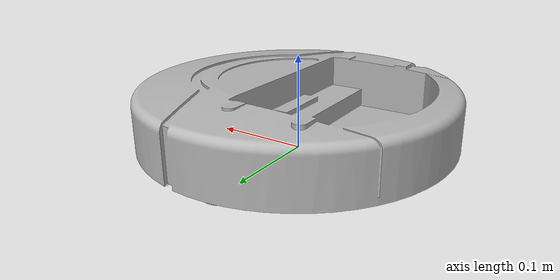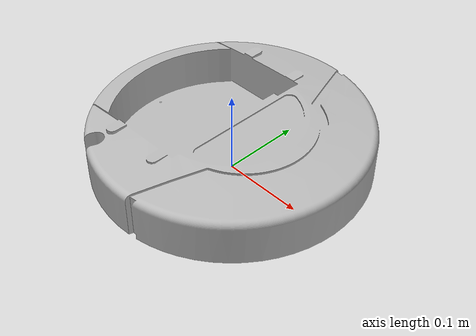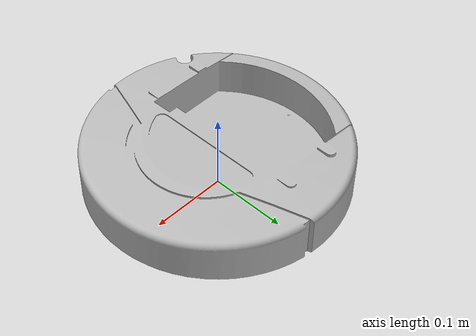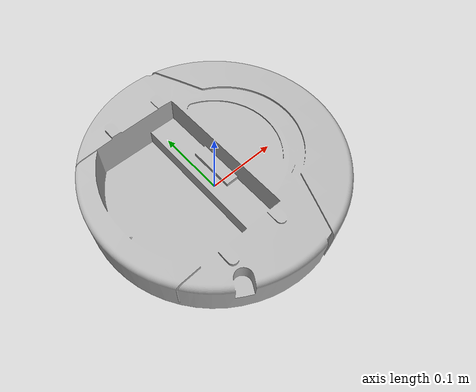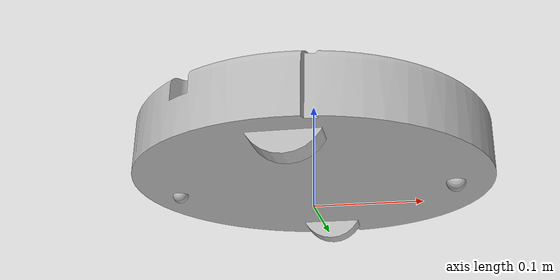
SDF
<?xml version="1.0" ?>
<sdf version="1.4">
  <model name="iRobotCreate">
    <link name="base_link">
      <inertial>
        <pose>0.001453 -0.000453 0.029787 0 0 0</pose>
        <inertia>
          <ixx>0.058640</ixx>
          <ixy>0.000124</ixy>
          <ixz>0.000615</ixz>
          <iyy>0.058786</iyy>
          <iyz>0.000014</iyz>
          <izz>1.532440</izz>
        </inertia>
        <mass>2.234000</mass>
      </inertial>

      <collision name="base_link_collision">
        <pose>0 0 0.047800 0 0 0</pose>
        <geometry>
          <cylinder>
            <radius>0.166495</radius>
            <length>0.061163</length>
          </cylinder>
        </geometry>
      </collision>
      <visual name="base_link_visual">
        <pose>0 0 0.047800 0 0 0</pose>
        <geometry>
          <mesh>
            <uri>model://irobot/meshes/create_blinky.dae</uri>
          </mesh>
        </geometry>
      </visual>

      <collision name="front_wheel_collision">
        <pose>0.130000 0 0.017000 0 1.570700 1.570700</pose>
        <geometry>
          <sphere>
            <radius>0.018000</radius>
          </sphere>
        </geometry>
        <surface>
          <friction>
            <ode>
              <mu>0</mu>
              <mu2>0</mu2>
              <fdir1>0 0 0</fdir1>
              <slip1>0</slip1>
              <slip2>0</slip2>
            </ode>
          </friction>
        </surface>
      </collision>
      <visual name="front_wheel_visual">
        <pose>0.130000 0 0.017000 0 1.570700 1.570700</pose>
        <geometry>
          <sphere>
            <radius>0.009000</radius>
          </sphere>
        </geometry>
      </visual>

      <collision name="rear_wheel_collision">
        <pose>-0.13 0 0.017 0 1.5707 1.5707</pose>
        <geometry>
          <sphere>
            <radius>0.015000</radius>
          </sphere>
        </geometry>
        <surface>
          <friction>
            <ode>
              <mu>0</mu>
              <mu2>0</mu2>
              <fdir1>0 0 0</fdir1>
              <slip1>0</slip1>
              <slip2>0</slip2>
            </ode>
          </friction>
        </surface>
      </collision>
      <visual name="rear_wheel_visual">
        <pose>-0.130000 0 0.017000 0 1.570700 1.570700</pose>
        <geometry>
          <sphere>
            <radius>0.007500</radius>
          </sphere>
        </geometry>
      </visual>

      <sensor name='left_distance_sensor' type='ray'>
          <visualize>1</visualize>
          <update_rate>40</update_rate>
          <ray>
            <scan>
              <horizontal>
                <samples>3</samples>
                <resolution>1</resolution>
                <min_angle>0.0</min_angle>
                <max_angle>-0.16</max_angle>
              </horizontal>
            </scan>
            <range>
              <min>0.1</min>
              <max>1.25</max>
              <resolution>0.025</resolution>
            </range>
            <noise>
              <type>gaussian</type>
              <mean>0</mean>
              <stddev>0.025</stddev>
            </noise>
          </ray>
          <plugin name='gazebo_ros_left_distance_controller' filename='libgazebo_ros_laser.so'>
            <topicName>irobot/left_distance_scan</topicName>
            <frameName>irobot_l_dist</frameName>
          </plugin>
          <pose>0.1 0.1 0.06 0 0 0.3</pose>
      </sensor>

      <sensor name='camera' type='camera'>
          <visualize>1</visualize>
          <update_rate>40</update_rate>
          <camera name="head">
        	<horizontal_fov>1.3962634</horizontal_fov>
        	<image>
          		<width>800</width>
          		<height>800</height>
          		<format>R8G8B8</format>
        	</image>
        	<clip>
          		<near>0.02</near>
          		<far>300</far>
        	</clip>
        	<noise>
          	<type>gaussian</type>
          	<!-- Noise is sampled independently per pixel on each frame.
               That pixel's noise value is added to each of its color
               channels, which at that point lie in the range [0,1]. -->
          	<mean>0.0</mean>
          	<stddev>0.007</stddev>
        	</noise>
      	   </camera>
          <plugin name='camera_controller' filename='libgazebo_ros_camera.so'>
            	<alwaysOn>true</alwaysOn>
        	<updateRate>0.0</updateRate>
        	<cameraName>irobot/camera</cameraName>
        	<imageTopicName>image_raw</imageTopicName>
        	<cameraInfoTopicName>camera_info</cameraInfoTopicName>
        	<frameName>camera_link</frameName>
        	<hackBaseline>0.07</hackBaseline>
        	<distortionK1>0.0</distortionK1>
        	<distortionK2>0.0</distortionK2>
        	<distortionK3>0.0</distortionK3>
        	<distortionT1>0.0</distortionT1>
        	<distortionT2>0.0</distortionT2>
          </plugin>
          <pose>0.2 0 0 0 -0.25 0</pose>
      </sensor>

      <sensor name='right_distance_sensor' type='ray'>
            <visualize>1</visualize>
            <update_rate>40</update_rate>
            <ray>
              <scan>
                <horizontal>
                  <samples>3</samples>
                  <resolution>1</resolution>
                  <min_angle>0.0</min_angle>
                  <max_angle>0.16</max_angle>
                </horizontal>
              </scan>
              <range>
                <min>0.1</min>
                <max>1.25</max>
                <resolution>0.025</resolution>
              </range>
              <noise>
                <type>gaussian</type>
                <mean>0</mean>
                <stddev>0.025</stddev>
              </noise>
            </ray>
            <plugin name='gazebo_ros_right_distance_controller' filename='libgazebo_ros_laser.so'>
              <topicName>irobot/right_distance_scan</topicName>
              <frameName>irobot_r_dist</frameName>
            </plugin>
            <pose>0.1 -0.1 0.06 0 0 -0.3</pose>
        </sensor>

          <sensor name='left_cliff_sensor' type='ray'>
              <visualize>1</visualize>
              <update_rate>40</update_rate>
              <ray>
                <scan>
                  <horizontal>
                    <samples>3</samples>
                    <resolution>1</resolution>
                    <min_angle>-0.05</min_angle>
                    <max_angle>0.05</max_angle>
                  </horizontal>
                </scan>
                <range>
                  <min>0.0</min>
                  <max>0.15</max>
                  <resolution>0.025</resolution>
                </range>
                <noise>
                  <type>gaussian</type>
                  <mean>0</mean>
                  <stddev>0</stddev>
                </noise>
              </ray>
              <plugin name='gazebo_ros_left_cliff_controller' filename='libgazebo_ros_laser.so'>
                <topicName>irobot/left_cliff_scan</topicName>
                <frameName>irobot_l_cliff</frameName>
              </plugin>
              <pose>0.09 0.13 0.06 0 1.5708 0</pose>
          </sensor>

          <sensor name='left_front_cliff_sensor' type='ray'>
              <visualize>1</visualize>
              <update_rate>40</update_rate>
              <ray>
                <scan>
                  <horizontal>
                    <samples>3</samples>
                    <resolution>1</resolution>
                    <min_angle>-0.05</min_angle>
                    <max_angle>0.05</max_angle>
                  </horizontal>
                </scan>
                <range>
                  <min>0.0</min>
                  <max>0.15</max>
                  <resolution>0.025</resolution>
                </range>
                <noise>
                  <type>gaussian</type>
                  <mean>0</mean>
                  <stddev>0</stddev>
                </noise>
              </ray>
              <plugin name='gazebo_ros_left_front_cliff_controller' filename='libgazebo_ros_laser.so'>
                <topicName>irobot/left_front_cliff_scan</topicName>
                <frameName>irobot_lf_cliff</frameName>
              </plugin>
              <pose>0.15 0.05 0.06 0 1.5708 0</pose>
          </sensor>

            <sensor name='right_front_cliff_sensor' type='ray'>
                <visualize>1</visualize>
                <update_rate>40</update_rate>
                <ray>
                  <scan>
                    <horizontal>
                      <samples>3</samples>
                      <resolution>1</resolution>
                      <min_angle>-0.05</min_angle>
                      <max_angle>0.05</max_angle>
                    </horizontal>
                  </scan>
                  <range>
                    <min>0.0</min>
                    <max>0.15</max>
                    <resolution>0.025</resolution>
                  </range>
                  <noise>
                    <type>gaussian</type>
                    <mean>0</mean>
                    <stddev>0</stddev>
                  </noise>
                </ray>
                <plugin name='gazebo_ros_right_front_cliff_controller' filename='libgazebo_ros_laser.so'>
                  <topicName>irobot/right_front_cliff_scan</topicName>
                  <frameName>irobot_rf_cliff</frameName>
                </plugin>
                <pose>0.15 -0.05 0.06 0 1.5708 0</pose>
            </sensor>

            <sensor name='right_cliff_sensor' type='ray'>
                <visualize>1</visualize>
                <update_rate>40</update_rate>
                <ray>
                  <scan>
                    <horizontal>
                      <samples>3</samples>
                      <resolution>1</resolution>
                      <min_angle>-0.05</min_angle>
                      <max_angle>0.05</max_angle>
                    </horizontal>
                  </scan>
                  <range>
                    <min>0.0</min>
                    <max>0.15</max>
                    <resolution>0.025</resolution>
                  </range>
                  <noise>
                    <type>gaussian</type>
                    <mean>0</mean>
                    <stddev>0</stddev>
                  </noise>
                </ray>
                <plugin name='gazebo_ros_right_cliff_controller' filename='libgazebo_ros_laser.so'>
                  <topicName>irobot/right_cliff_scan</topicName>
                  <frameName>irobot_r_cliff</frameName>
                </plugin>
                <pose>0.09 -0.13 0.06 0 1.5708 0</pose>
            </sensor>

            <sensor name='bump_sensor' type='ray'>
                <visualize>1</visualize>
                <update_rate>40</update_rate>
                <ray>
                  <scan>
                    <horizontal>
                      <samples>10</samples>
                      <resolution>1</resolution>
                      <min_angle>-1.0</min_angle>
                      <max_angle>1.0</max_angle>
                    </horizontal>
                  </scan>
                  <range>
                    <min>0.168</min>
                    <max>0.180</max>
                    <resolution>0.025</resolution>
                  </range>
                  <noise>
                    <type>gaussian</type>
                    <mean>0</mean>
                    <stddev>0</stddev>
                  </noise>
                </ray>
                <plugin name='gazebo_ros_bump_distance_controller' filename='libgazebo_ros_laser.so'>
                  <topicName>irobot/bump_sensor_scan</topicName>
                  <frameName>irobot_bump</frameName>
                </plugin>
                <pose>0 0 0.02 0 0 0</pose>
            </sensor>
    </link>

    <link name="left_wheel">
      <pose>0 0.130000 0.032000 0 0 0</pose>
      <inertial>
        <inertia>
          <ixx>0.001000</ixx>
          <ixy>0</ixy>
          <ixz>0</ixz>
          <iyy>0.001000</iyy>
          <iyz>0</iyz>
          <izz>0.001000</izz>
        </inertia>
        <mass>0.010000</mass>
      </inertial>
      <collision name="collision">
        <pose>0 0 0 0 1.570700 1.570700</pose>
        <geometry>
          <cylinder>
            <radius>0.033000</radius>
            <length>0.023000</length>
          </cylinder>
        </geometry>
        <surface>
          <friction>
            <ode>
              <mu>10</mu>
              <mu2>10</mu2>
              <fdir1>0 0 0</fdir1>
              <slip1>0</slip1>
              <slip2>0</slip2>
            </ode>
          </friction>
        </surface>
      </collision>
      <visual name="visual">
        <pose>0 0 0 0 1.570700 1.570700</pose>
        <geometry>
          <cylinder>
            <radius>0.033000</radius>
            <length>0.023000</length>
          </cylinder>
        </geometry>
      </visual>
    </link>

    <link name="right_wheel">
      <pose>0 -0.130000 0.032000 0 0 0</pose>
      <inertial>
        <inertia>
          <ixx>0.001000</ixx>
          <ixy>0</ixy>
          <ixz>0</ixz>
          <iyy>0.001000</iyy>
          <iyz>0</iyz>
          <izz>0.001000</izz>
        </inertia>
        <mass>0.010000</mass>
      </inertial>
      <collision name="collision">
        <pose>0 0 0 0 1.570700 1.570700</pose>
        <geometry>
          <cylinder>
            <radius>0.033000</radius>
            <length>0.023000</length>
          </cylinder>
        </geometry>
        <surface>
          <friction>
            <ode>
              <mu>10</mu>
              <mu2>10</mu2>
              <fdir1>0 0 0</fdir1>
              <slip1>0</slip1>
              <slip2>0</slip2>
            </ode>
          </friction>
        </surface>
      </collision>
      <visual name="visual">
        <pose>0 0 0 0 1.570700 1.570700</pose>
        <geometry>
          <cylinder>
            <radius>0.033000</radius>
            <length>0.023000</length>
          </cylinder>
        </geometry>
      </visual>
    </link>

    <joint name="left_wheel" type="revolute">
      <parent>base_link</parent>
      <child>left_wheel</child>
      <axis>
        <xyz>0 1 0</xyz>
      </axis>
    </joint>

    <joint name="right_wheel" type="revolute">
      <parent>base_link</parent>
      <child>right_wheel</child>
      <axis>
        <xyz>0 1 0</xyz>
      </axis>
    </joint>

  <plugin name="differential_drive_controller" filename="libgazebo_ros_diff_drive.so">
    <rosDebugLevel>Debug</rosDebugLevel>
    <publishWheelTF>true</publishWheelTF>
    <publishWheelJointState>true</publishWheelJointState>
    <wheelAcceleration>0</wheelAcceleration>
    <wheelTorque>5</wheelTorque>
    <odometrySource>encoder</odometrySource>
    <publishTf>1</publishTf>
    <alwaysOn>true</alwaysOn>
    <updateRate>100.0</updateRate>
    <leftJoint>right_wheel</leftJoint>
    <rightJoint>left_wheel</rightJoint>
    <wheelSeparation>0.26</wheelSeparation>
    <wheelDiameter>0.066</wheelDiameter>
    <torque>20</torque>
    <commandTopic>irobot/cmd_vel</commandTopic>
    <odometryTopic>irobot/odom</odometryTopic>
    <odometryFrame>odom_original</odometryFrame>
    <robotBaseFrame>none</robotBaseFrame>
  </plugin>

  <plugin name='gazebo_ros_gps' filename='libgazebo_gps_plugin.so'>
    <updateRate>5.0</updateRate>
    <frameId>gps_antenna</frameId>
    <topicName>irobot/gps_data</topicName>
    <velocityTopicName>irobot/gps_velocity</velocityTopicName>
    <offset>0 0 0</offset>
    <drift>0.001 0.001 0.001</drift>
    <gaussianNoise>0.075 0.075 0.075</gaussianNoise>
    <velocityDrift>0 0 0</velocityDrift>
    <velocityGaussianNoise>0.01 0.01 0.01</velocityGaussianNoise>
    <bodyName>base_link</bodyName>
    <xyzOffset>-0.0 0.0 -0.0</xyzOffset>
    <rpyOffset>0 -0 0</rpyOffset>
  </plugin>

  <plugin name="irobot_imu_plugin" filename="libgazebo_ros_imu.so">
      <alwaysOn>true</alwaysOn>
      <updateRate>100.0</updateRate>
      <bodyName>base_link</bodyName>
      <topicName>irobot/imu_data</topicName>
      <serviceName>irobot/imu_service</serviceName>
      <gaussianNoise>0.1</gaussianNoise>
  </plugin>

  </model>
</sdf>
